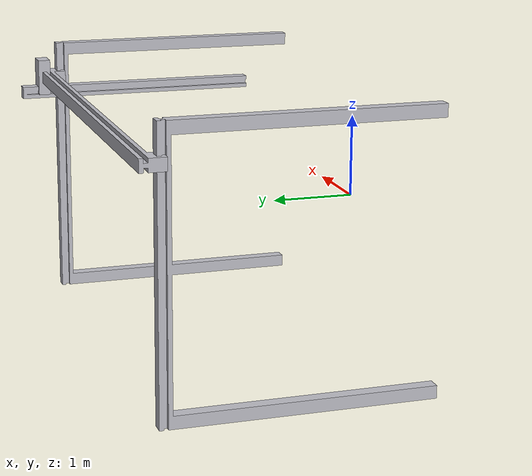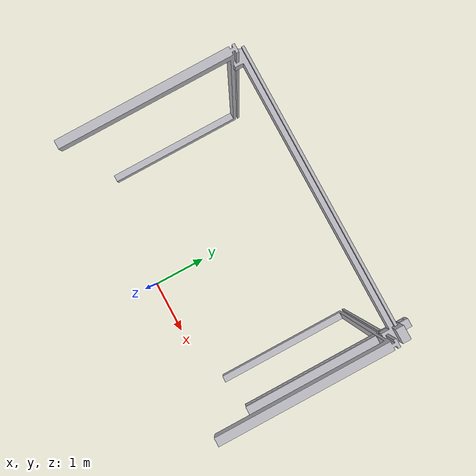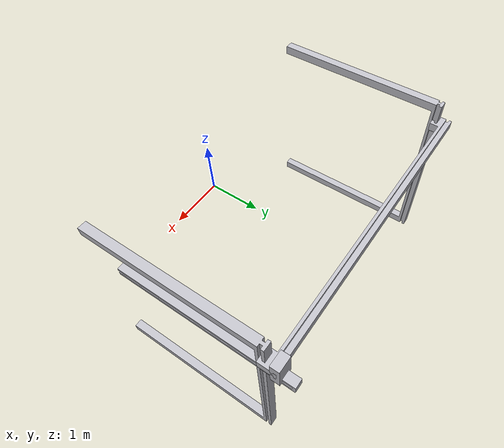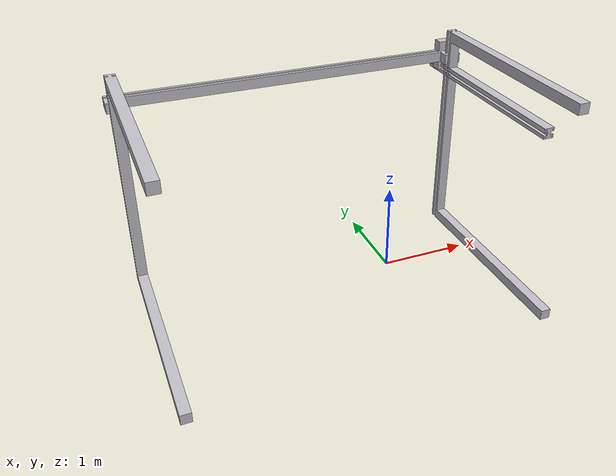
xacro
<?xml version="1.0" ?>
<robot name="Untitled" xmlns:xacro="http://www.ros.org/wiki/xacro">

<xacro:include filename="$(find Untitled_description)/urdf/materials.xacro" />
<xacro:include filename="$(find Untitled_description)/urdf/Untitled.trans" />
<xacro:include filename="$(find Untitled_description)/urdf/Untitled.gazebo" />
<link name="base_link">
  <inertial>
    <origin xyz="-1.3464311429255473e-15 1.9718871595330731 9.663528660082786e-17" rpy="0 0 0"/>
    <mass value="3026.175"/>
    <inertia ixx="9251.482693" iyy="26155.356125" izz="23237.906193" ixy="-0.0" iyz="0.0" ixz="0.0"/>
  </inertial>
  <visual>
    <origin xyz="0 0 0" rpy="0 0 0"/>
    <geometry>
      <mesh filename="file://$(find Untitled_description)/meshes/base_link.stl" scale="0.001 0.001 0.001"/>
    </geometry>
    <material name="silver"/>
  </visual>
  <collision>
    <origin xyz="0 0 0" rpy="0 0 0"/>
    <geometry>
      <mesh filename="file://$(find Untitled_description)/meshes/base_link.stl" scale="0.001 0.001 0.001"/>
    </geometry>
  </collision>
</link>

<link name="Component1_1">
  <inertial>
    <origin xyz="2.550000000000014 0.21332116788320965 -2.217600411101023" rpy="0 0 0"/>
    <mass value="806.5875000000103"/>
    <inertia ixx="4.484689" iyy="2233.811945" izz="2235.625181" ixy="0.0" iyz="0.0" ixz="-0.0"/>
  </inertial>
  <visual>
    <origin xyz="2.55 -3.05 -1.65" rpy="0 0 0"/>
    <geometry>
      <mesh filename="file://$(find Untitled_description)/meshes/Component1_1.stl" scale="0.001 0.001 0.001"/>
    </geometry>
    <material name="silver"/>
  </visual>
  <collision>
    <origin xyz="2.55 -3.05 -1.65" rpy="0 0 0"/>
    <geometry>
      <mesh filename="file://$(find Untitled_description)/meshes/Component1_1.stl" scale="0.001 0.001 0.001"/>
    </geometry>
  </collision>
</link>

<link name="Component2_1">
  <inertial>
    <origin xyz="-4.438883531196298 -2.92257281553398 0.6865326277339285" rpy="0 0 0"/>
    <mass value="101.06874999999998"/>
    <inertia ixx="2.06101" iyy="2.422215" izz="0.779907" ixy="0.0" iyz="0.004644" ixz="0.0"/>
  </inertial>
  <visual>
    <origin xyz="-2.7 -6.25 1.235201" rpy="0 0 0"/>
    <geometry>
      <mesh filename="file://$(find Untitled_description)/meshes/Component2_1.stl" scale="0.001 0.001 0.001"/>
    </geometry>
    <material name="silver"/>
  </visual>
  <collision>
    <origin xyz="-2.7 -6.25 1.235201" rpy="0 0 0"/>
    <geometry>
      <mesh filename="file://$(find Untitled_description)/meshes/Component2_1.stl" scale="0.001 0.001 0.001"/>
    </geometry>
  </collision>
</link>

<link name="Component3_1">
  <inertial>
    <origin xyz="1.6138834688037025 -2.946413530096626 0.36760058889897673" rpy="0 0 0"/>
    <mass value="420.8576039906773"/>
    <inertia ixx="329.95812" iyy="1.676213" izz="329.663745" ixy="0.0" iyz="0.0" ixz="-0.0"/>
  </inertial>
  <visual>
    <origin xyz="3.352767 -6.725 1.135201" rpy="0 0 0"/>
    <geometry>
      <mesh filename="file://$(find Untitled_description)/meshes/Component3_1.stl" scale="0.001 0.001 0.001"/>
    </geometry>
    <material name="silver"/>
  </visual>
  <collision>
    <origin xyz="3.352767 -6.725 1.135201" rpy="0 0 0"/>
    <geometry>
      <mesh filename="file://$(find Untitled_description)/meshes/Component3_1.stl" scale="0.001 0.001 0.001"/>
    </geometry>
  </collision>
</link>

<joint name="Slider 1" type="prismatic">
  <origin xyz="-2.55 3.05 1.65" rpy="0 0 0"/>
  <parent link="base_link"/>
  <child link="Component1_1"/>
  <axis xyz="0.0 0.0 1.0"/>
  <limit upper="0.0" lower="0.0" effort="100" velocity="100"/>
</joint>

<joint name="Slider 2" type="prismatic">
  <origin xyz="5.25 3.2 -2.885201" rpy="0 0 0"/>
  <parent link="Component1_1"/>
  <child link="Component2_1"/>
  <axis xyz="-1.0 0.0 0.0"/>
  <limit upper="0.0" lower="0.0" effort="100" velocity="100"/>
</joint>

<joint name="Slider 3" type="prismatic">
  <origin xyz="-6.052767 0.475 0.1" rpy="0 0 0"/>
  <parent link="Component2_1"/>
  <child link="Component3_1"/>
  <axis xyz="0.0 1.0 0.0"/>
  <limit upper="0.0" lower="0.0" effort="100" velocity="100"/>
</joint>

</robot>

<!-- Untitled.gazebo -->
<robot name="Untitled" xmlns:xacro="http://www.ros.org/wiki/xacro" >

<xacro:property name="body_color" value="Gazebo/Silver" />

<gazebo>
  <plugin name="control" filename="libgazebo_ros_control.so"/>
</gazebo>
<gazebo reference="base_link">
  <material>${body_color}</material>
  <mu1>0.2</mu1>
  <mu2>0.2</mu2>
  <self_collide>true</self_collide>
  <gravity>true</gravity>
</gazebo>

<gazebo reference="Component1_1">
  <material>${body_color}</material>
  <mu1>0.2</mu1>
  <mu2>0.2</mu2>
  <self_collide>true</self_collide>
</gazebo>

<gazebo reference="Component2_1">
  <material>${body_color}</material>
  <mu1>0.2</mu1>
  <mu2>0.2</mu2>
  <self_collide>true</self_collide>
</gazebo>

<gazebo reference="Component3_1">
  <material>${body_color}</material>
  <mu1>0.2</mu1>
  <mu2>0.2</mu2>
  <self_collide>true</self_collide>
</gazebo>

</robot>
